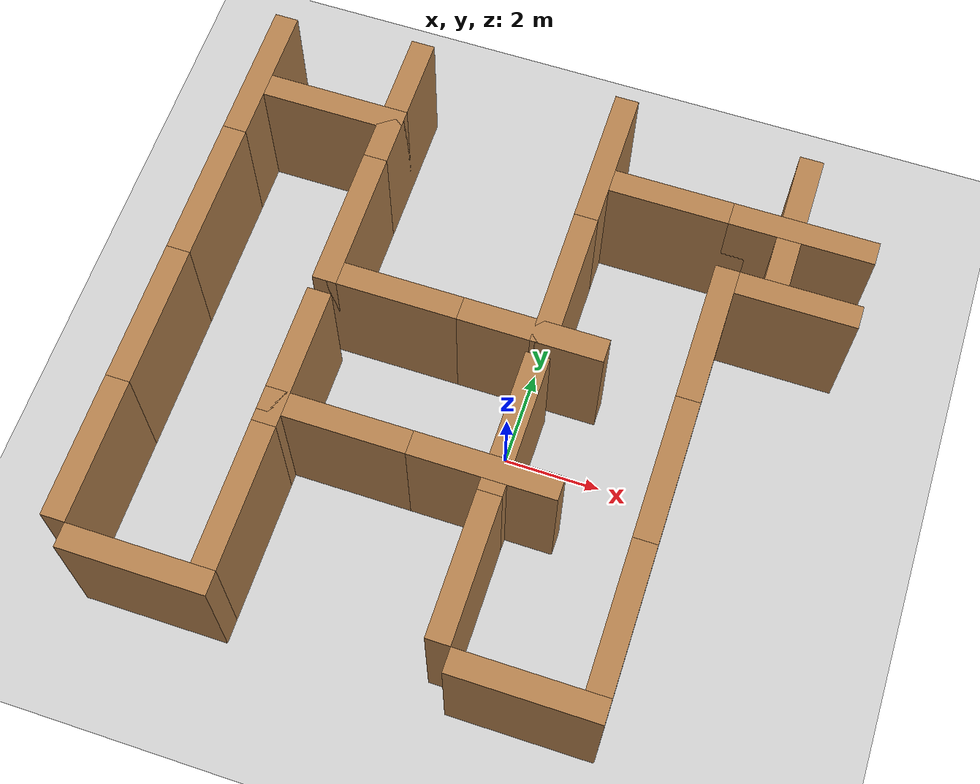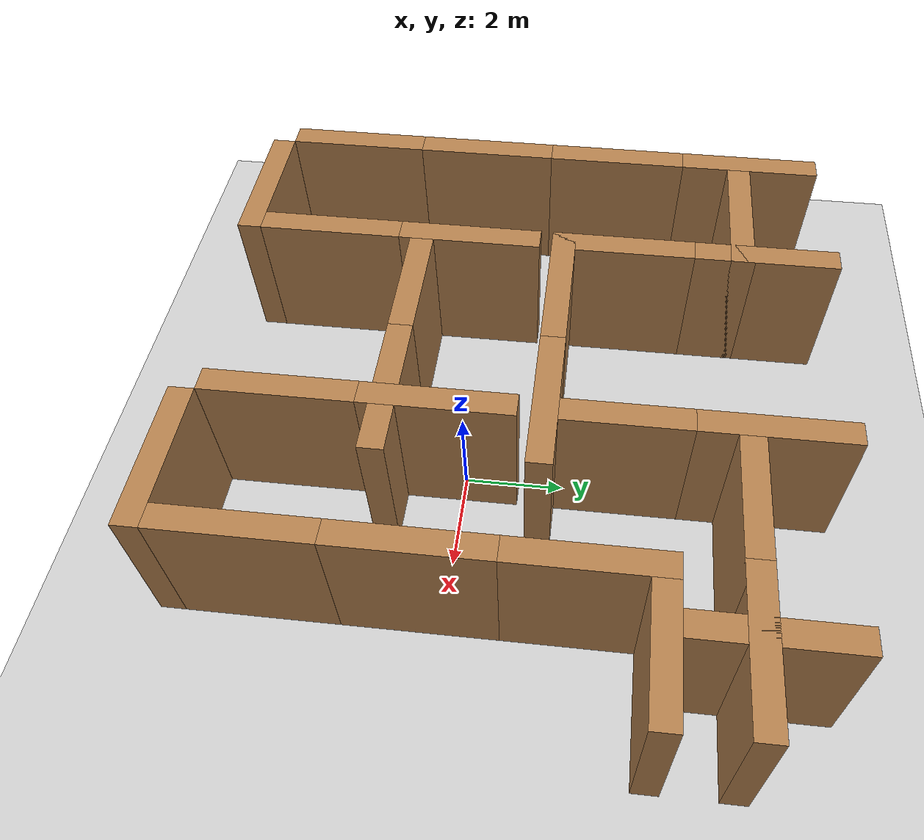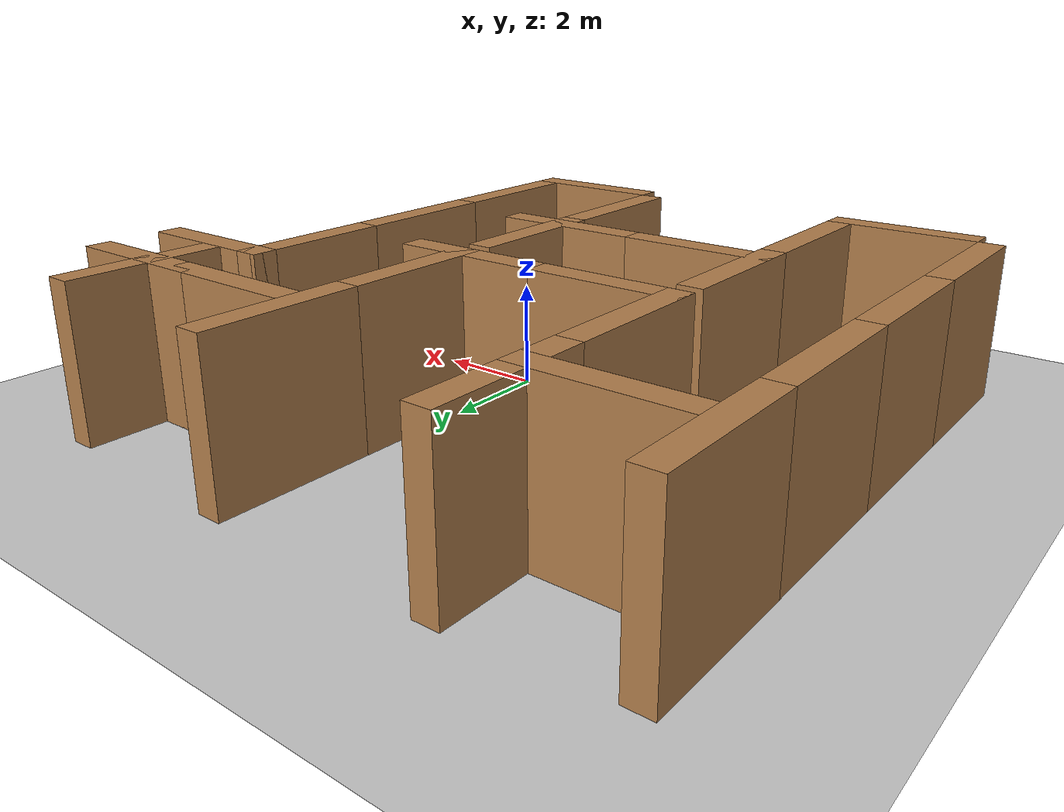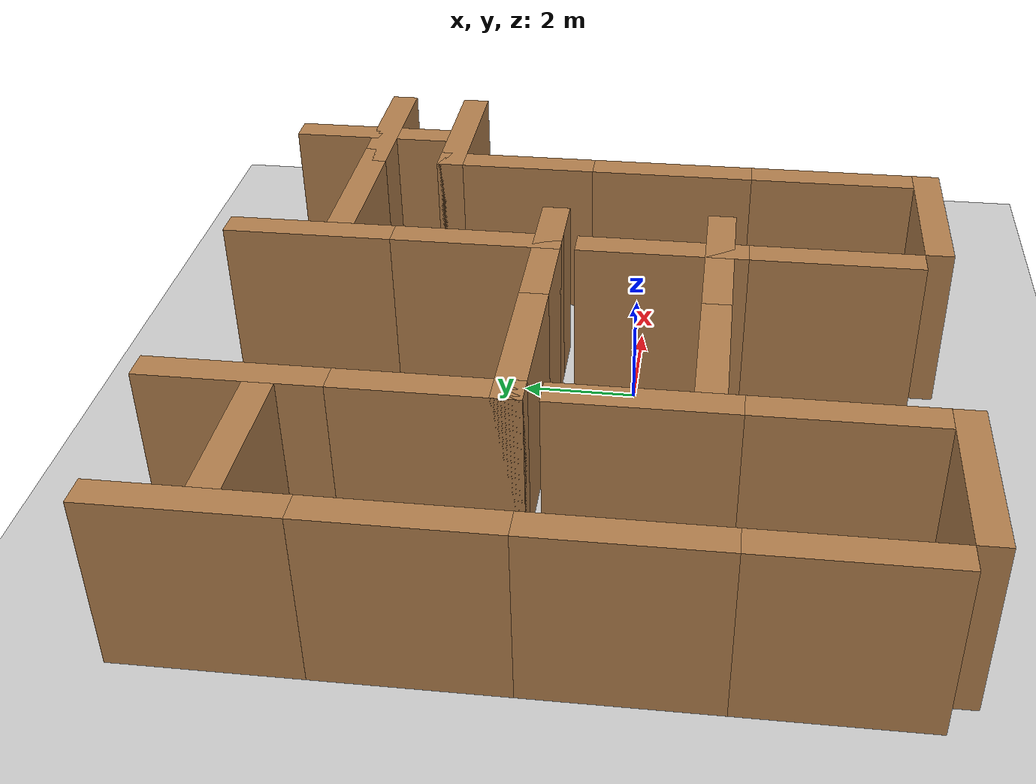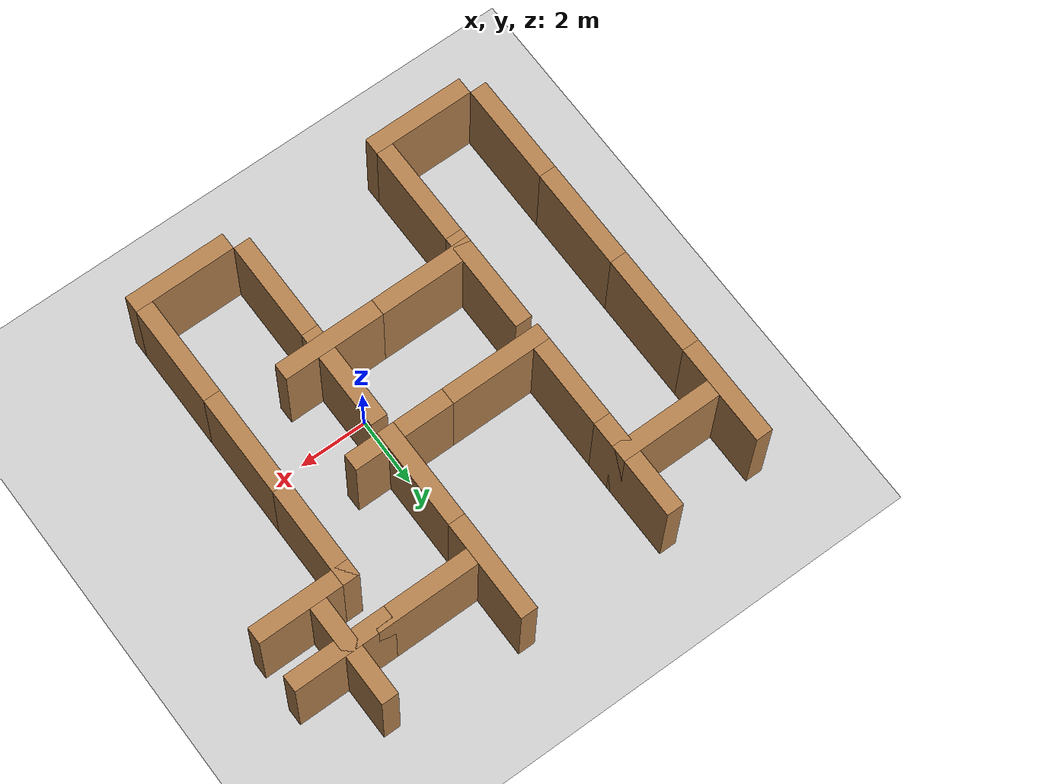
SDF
<sdf version="1.10">
 <world name="h_map_world">
  <model name="ground_plane">
   <static>true</static>
   <link name="link">
    <collision name="collision">
     <geometry><plane><normal>0 0 1</normal><size>100 100</size></plane></geometry>
     <surface><friction><ode><mu>50</mu></ode></friction></surface>
    </collision>
    <visual name="visual">
     <geometry><plane><normal>0 0 1</normal><size>100 100</size></plane></geometry>
     <material>
      <ambient>0.800000012 0.800000012 0.800000012 1</ambient>
      <diffuse>0.800000012 0.800000012 0.800000012 1</diffuse>
      <specular>0.800000012 0.800000012 0.800000012 1</specular>
     </material>
    </visual>
    <inertial>
     <mass>1</mass>
     <inertia><ixx>1</ixx><ixy>0</ixy><ixz>0</ixz><iyy>1</iyy><iyz>0</iyz><izz>1</izz></inertia>
    </inertial>
   </link>
  </model>
  <model name="left_west_0">
   <static>true</static>
   <link name="chassis">
    <pose>0 0 1.5 0 0 0</pose>
    <collision name="collision"><geometry><box><size>3 0.5 3</size></box></geometry></collision>
    <visual name="visual">
     <geometry>
      <mesh><uri>model://brick_box_3x1x3/meshes/simple_box.dae</uri><scale>3 0.5 3</scale></mesh>
     </geometry>
     <material>
      <diffuse>1 1 1 1</diffuse>
      <script><uri>file://media/materials/scripts/gazebo.material</uri><name>Gazebo/Wood</name></script>
      <pbr><metal><albedo_map>model://brick_box_3x1x3/materials/textures/simple_box.png</albedo_map></metal></pbr>
     </material>
    </visual>
   </link>
   <pose>-7.2500 -3.4000 0 0 0 -1.5707963268</pose>
  </model>
  <model name="left_west_1">
   <static>true</static>
   <link name="chassis">
    <pose>0 0 1.5 0 0 0</pose>
    <collision name="collision"><geometry><box><size>3 0.5 3</size></box></geometry></collision>
    <visual name="visual">
     <geometry>
      <mesh><uri>model://brick_box_3x1x3/meshes/simple_box.dae</uri><scale>3 0.5 3</scale></mesh>
     </geometry>
     <material>
      <diffuse>1 1 1 1</diffuse>
      <script><uri>file://media/materials/scripts/gazebo.material</uri><name>Gazebo/Wood</name></script>
      <pbr><metal><albedo_map>model://brick_box_3x1x3/materials/textures/simple_box.png</albedo_map></metal></pbr>
     </material>
    </visual>
   </link>
   <pose>-7.2500 -0.4000 0 0 0 -1.5707963268</pose>
  </model>
  <model name="left_west_2">
   <static>true</static>
   <link name="chassis">
    <pose>0 0 1.5 0 0 0</pose>
    <collision name="collision"><geometry><box><size>3 0.5 3</size></box></geometry></collision>
    <visual name="visual">
     <geometry>
      <mesh><uri>model://brick_box_3x1x3/meshes/simple_box.dae</uri><scale>3 0.5 3</scale></mesh>
     </geometry>
     <material>
      <diffuse>1 1 1 1</diffuse>
      <script><uri>file://media/materials/scripts/gazebo.material</uri><name>Gazebo/Wood</name></script>
      <pbr><metal><albedo_map>model://brick_box_3x1x3/materials/textures/simple_box.png</albedo_map></metal></pbr>
     </material>
    </visual>
   </link>
   <pose>-7.2500 2.6000 0 0 0 -1.5707963268</pose>
  </model>
  <model name="left_west_3">
   <static>true</static>
   <link name="chassis">
    <pose>0 0 1.5 0 0 0</pose>
    <collision name="collision"><geometry><box><size>3 0.5 3</size></box></geometry></collision>
    <visual name="visual">
     <geometry>
      <mesh><uri>model://brick_box_3x1x3/meshes/simple_box.dae</uri><scale>3 0.5 3</scale></mesh>
     </geometry>
     <material>
      <diffuse>1 1 1 1</diffuse>
      <script><uri>file://media/materials/scripts/gazebo.material</uri><name>Gazebo/Wood</name></script>
      <pbr><metal><albedo_map>model://brick_box_3x1x3/materials/textures/simple_box.png</albedo_map></metal></pbr>
     </material>
    </visual>
   </link>
   <pose>-7.2500 5.6000 0 0 0 -1.5707963268</pose>
  </model>
  <model name="left_north_0">
   <static>true</static>
   <link name="chassis">
    <pose>0 0 1.5 0 0 0</pose>
    <collision name="collision"><geometry><box><size>3 0.5 3</size></box></geometry></collision>
    <visual name="visual">
     <geometry>
      <mesh><uri>model://brick_box_3x1x3/meshes/simple_box.dae</uri><scale>3 0.5 3</scale></mesh>
     </geometry>
     <material>
      <diffuse>1 1 1 1</diffuse>
      <script><uri>file://media/materials/scripts/gazebo.material</uri><name>Gazebo/Wood</name></script>
      <pbr><metal><albedo_map>model://brick_box_3x1x3/materials/textures/simple_box.png</albedo_map></metal></pbr>
     </material>
    </visual>
   </link>
   <pose>-5.5000 5.3500 0 0 0 0.0000000000</pose>
  </model>
  <model name="left_south_0">
   <static>true</static>
   <link name="chassis">
    <pose>0 0 1.5 0 0 0</pose>
    <collision name="collision"><geometry><box><size>3 0.5 3</size></box></geometry></collision>
    <visual name="visual">
     <geometry>
      <mesh><uri>model://brick_box_3x1x3/meshes/simple_box.dae</uri><scale>3 0.5 3</scale></mesh>
     </geometry>
     <material>
      <diffuse>1 1 1 1</diffuse>
      <script><uri>file://media/materials/scripts/gazebo.material</uri><name>Gazebo/Wood</name></script>
      <pbr><metal><albedo_map>model://brick_box_3x1x3/materials/textures/simple_box.png</albedo_map></metal></pbr>
     </material>
    </visual>
   </link>
   <pose>-5.5000 -5.1500 0 0 0 0.0000000000</pose>
  </model>
  <model name="right_north_0">
   <static>true</static>
   <link name="chassis">
    <pose>0 0 1.5 0 0 0</pose>
    <collision name="collision"><geometry><box><size>3 0.5 3</size></box></geometry></collision>
    <visual name="visual">
     <geometry>
      <mesh><uri>model://brick_box_3x1x3/meshes/simple_box.dae</uri><scale>3 0.5 3</scale></mesh>
     </geometry>
     <material>
      <diffuse>1 1 1 1</diffuse>
      <script><uri>file://media/materials/scripts/gazebo.material</uri><name>Gazebo/Wood</name></script>
      <pbr><metal><albedo_map>model://brick_box_3x1x3/materials/textures/simple_box.png</albedo_map></metal></pbr>
     </material>
    </visual>
   </link>
   <pose>2.0000 5.3500 0 0 0 0.0000000000</pose>
  </model>
  <model name="right_south_0">
   <static>true</static>
   <link name="chassis">
    <pose>0 0 1.5 0 0 0</pose>
    <collision name="collision"><geometry><box><size>3 0.5 3</size></box></geometry></collision>
    <visual name="visual">
     <geometry>
      <mesh><uri>model://brick_box_3x1x3/meshes/simple_box.dae</uri><scale>3 0.5 3</scale></mesh>
     </geometry>
     <material>
      <diffuse>1 1 1 1</diffuse>
      <script><uri>file://media/materials/scripts/gazebo.material</uri><name>Gazebo/Wood</name></script>
      <pbr><metal><albedo_map>model://brick_box_3x1x3/materials/textures/simple_box.png</albedo_map></metal></pbr>
     </material>
    </visual>
   </link>
   <pose>2.0000 -5.1500 0 0 0 0.0000000000</pose>
  </model>
  <model name="right_east_0">
   <static>true</static>
   <link name="chassis">
    <pose>0 0 1.5 0 0 0</pose>
    <collision name="collision"><geometry><box><size>3 0.5 3</size></box></geometry></collision>
    <visual name="visual">
     <geometry>
      <mesh><uri>model://brick_box_3x1x3/meshes/simple_box.dae</uri><scale>3 0.5 3</scale></mesh>
     </geometry>
     <material>
      <diffuse>1 1 1 1</diffuse>
      <script><uri>file://media/materials/scripts/gazebo.material</uri><name>Gazebo/Wood</name></script>
      <pbr><metal><albedo_map>model://brick_box_3x1x3/materials/textures/simple_box.png</albedo_map></metal></pbr>
     </material>
    </visual>
   </link>
   <pose>3.2500 -3.4000 0 0 0 -1.5707963268</pose>
  </model>
  <model name="right_east_1">
   <static>true</static>
   <link name="chassis">
    <pose>0 0 1.5 0 0 0</pose>
    <collision name="collision"><geometry><box><size>3 0.5 3</size></box></geometry></collision>
    <visual name="visual">
     <geometry>
      <mesh><uri>model://brick_box_3x1x3/meshes/simple_box.dae</uri><scale>3 0.5 3</scale></mesh>
     </geometry>
     <material>
      <diffuse>1 1 1 1</diffuse>
      <script><uri>file://media/materials/scripts/gazebo.material</uri><name>Gazebo/Wood</name></script>
      <pbr><metal><albedo_map>model://brick_box_3x1x3/materials/textures/simple_box.png</albedo_map></metal></pbr>
     </material>
    </visual>
   </link>
   <pose>3.2500 -0.4000 0 0 0 -1.5707963268</pose>
  </model>
  <model name="right_east_2">
   <static>true</static>
   <link name="chassis">
    <pose>0 0 1.5 0 0 0</pose>
    <collision name="collision"><geometry><box><size>3 0.5 3</size></box></geometry></collision>
    <visual name="visual">
     <geometry>
      <mesh><uri>model://brick_box_3x1x3/meshes/simple_box.dae</uri><scale>3 0.5 3</scale></mesh>
     </geometry>
     <material>
      <diffuse>1 1 1 1</diffuse>
      <script><uri>file://media/materials/scripts/gazebo.material</uri><name>Gazebo/Wood</name></script>
      <pbr><metal><albedo_map>model://brick_box_3x1x3/materials/textures/simple_box.png</albedo_map></metal></pbr>
     </material>
    </visual>
   </link>
   <pose>3.2500 2.6000 0 0 0 -1.5707963268</pose>
  </model>
  <model name="pocket_north_0">
   <static>true</static>
   <link name="chassis">
    <pose>0 0 1.5 0 0 0</pose>
    <collision name="collision"><geometry><box><size>3 0.5 3</size></box></geometry></collision>
    <visual name="visual">
     <geometry>
      <mesh><uri>model://brick_box_3x1x3/meshes/simple_box.dae</uri><scale>3 0.5 3</scale></mesh>
     </geometry>
     <material>
      <diffuse>1 1 1 1</diffuse>
      <script><uri>file://media/materials/scripts/gazebo.material</uri><name>Gazebo/Wood</name></script>
      <pbr><metal><albedo_map>model://brick_box_3x1x3/materials/textures/simple_box.png</albedo_map></metal></pbr>
     </material>
    </visual>
   </link>
   <pose>4.5000 5.3500 0 0 0 0.0000000000</pose>
  </model>
  <model name="pocket_east_0">
   <static>true</static>
   <link name="chassis">
    <pose>0 0 1.5 0 0 0</pose>
    <collision name="collision"><geometry><box><size>3 0.5 3</size></box></geometry></collision>
    <visual name="visual">
     <geometry>
      <mesh><uri>model://brick_box_3x1x3/meshes/simple_box.dae</uri><scale>3 0.5 3</scale></mesh>
     </geometry>
     <material>
      <diffuse>1 1 1 1</diffuse>
      <script><uri>file://media/materials/scripts/gazebo.material</uri><name>Gazebo/Wood</name></script>
      <pbr><metal><albedo_map>model://brick_box_3x1x3/materials/textures/simple_box.png</albedo_map></metal></pbr>
     </material>
    </visual>
   </link>
   <pose>4.2500 5.6000 0 0 0 -1.5707963268</pose>
  </model>
  <model name="pocket_south_0">
   <static>true</static>
   <link name="chassis">
    <pose>0 0 1.5 0 0 0</pose>
    <collision name="collision"><geometry><box><size>3 0.5 3</size></box></geometry></collision>
    <visual name="visual">
     <geometry>
      <mesh><uri>model://brick_box_3x1x3/meshes/simple_box.dae</uri><scale>3 0.5 3</scale></mesh>
     </geometry>
     <material>
      <diffuse>1 1 1 1</diffuse>
      <script><uri>file://media/materials/scripts/gazebo.material</uri><name>Gazebo/Wood</name></script>
      <pbr><metal><albedo_map>model://brick_box_3x1x3/materials/textures/simple_box.png</albedo_map></metal></pbr>
     </material>
    </visual>
   </link>
   <pose>4.5000 3.8500 0 0 0 0.0000000000</pose>
  </model>
  <model name="left_east_upper_0">
   <static>true</static>
   <link name="chassis">
    <pose>0 0 1.5 0 0 0</pose>
    <collision name="collision"><geometry><box><size>3 0.5 3</size></box></geometry></collision>
    <visual name="visual">
     <geometry>
      <mesh><uri>model://brick_box_3x1x3/meshes/simple_box.dae</uri><scale>3 0.5 3</scale></mesh>
     </geometry>
     <material>
      <diffuse>1 1 1 1</diffuse>
      <script><uri>file://media/materials/scripts/gazebo.material</uri><name>Gazebo/Wood</name></script>
      <pbr><metal><albedo_map>model://brick_box_3x1x3/materials/textures/simple_box.png</albedo_map></metal></pbr>
     </material>
    </visual>
   </link>
   <pose>-4.2500 2.8500 0 0 0 -1.5707963268</pose>
  </model>
  <model name="left_east_upper_1">
   <static>true</static>
   <link name="chassis">
    <pose>0 0 1.5 0 0 0</pose>
    <collision name="collision"><geometry><box><size>3 0.5 3</size></box></geometry></collision>
    <visual name="visual">
     <geometry>
      <mesh><uri>model://brick_box_3x1x3/meshes/simple_box.dae</uri><scale>3 0.5 3</scale></mesh>
     </geometry>
     <material>
      <diffuse>1 1 1 1</diffuse>
      <script><uri>file://media/materials/scripts/gazebo.material</uri><name>Gazebo/Wood</name></script>
      <pbr><metal><albedo_map>model://brick_box_3x1x3/materials/textures/simple_box.png</albedo_map></metal></pbr>
     </material>
    </visual>
   </link>
   <pose>-4.2500 5.8500 0 0 0 -1.5707963268</pose>
  </model>
  <model name="left_east_lower_0">
   <static>true</static>
   <link name="chassis">
    <pose>0 0 1.5 0 0 0</pose>
    <collision name="collision"><geometry><box><size>3 0.5 3</size></box></geometry></collision>
    <visual name="visual">
     <geometry>
      <mesh><uri>model://brick_box_3x1x3/meshes/simple_box.dae</uri><scale>3 0.5 3</scale></mesh>
     </geometry>
     <material>
      <diffuse>1 1 1 1</diffuse>
      <script><uri>file://media/materials/scripts/gazebo.material</uri><name>Gazebo/Wood</name></script>
      <pbr><metal><albedo_map>model://brick_box_3x1x3/materials/textures/simple_box.png</albedo_map></metal></pbr>
     </material>
    </visual>
   </link>
   <pose>-4.2500 -3.4000 0 0 0 -1.5707963268</pose>
  </model>
  <model name="left_east_lower_1">
   <static>true</static>
   <link name="chassis">
    <pose>0 0 1.5 0 0 0</pose>
    <collision name="collision"><geometry><box><size>3 0.5 3</size></box></geometry></collision>
    <visual name="visual">
     <geometry>
      <mesh><uri>model://brick_box_3x1x3/meshes/simple_box.dae</uri><scale>3 0.5 3</scale></mesh>
     </geometry>
     <material>
      <diffuse>1 1 1 1</diffuse>
      <script><uri>file://media/materials/scripts/gazebo.material</uri><name>Gazebo/Wood</name></script>
      <pbr><metal><albedo_map>model://brick_box_3x1x3/materials/textures/simple_box.png</albedo_map></metal></pbr>
     </material>
    </visual>
   </link>
   <pose>-4.2500 -0.4000 0 0 0 -1.5707963268</pose>
  </model>
  <model name="bridge_north_0">
   <static>true</static>
   <link name="chassis">
    <pose>0 0 1.5 0 0 0</pose>
    <collision name="collision"><geometry><box><size>3 0.5 3</size></box></geometry></collision>
    <visual name="visual">
     <geometry>
      <mesh><uri>model://brick_box_3x1x3/meshes/simple_box.dae</uri><scale>3 0.5 3</scale></mesh>
     </geometry>
     <material>
      <diffuse>1 1 1 1</diffuse>
      <script><uri>file://media/materials/scripts/gazebo.material</uri><name>Gazebo/Wood</name></script>
      <pbr><metal><albedo_map>model://brick_box_3x1x3/materials/textures/simple_box.png</albedo_map></metal></pbr>
     </material>
    </visual>
   </link>
   <pose>-3.0000 1.6000 0 0 0 0.0000000000</pose>
  </model>
  <model name="bridge_north_1">
   <static>true</static>
   <link name="chassis">
    <pose>0 0 1.5 0 0 0</pose>
    <collision name="collision"><geometry><box><size>3 0.5 3</size></box></geometry></collision>
    <visual name="visual">
     <geometry>
      <mesh><uri>model://brick_box_3x1x3/meshes/simple_box.dae</uri><scale>3 0.5 3</scale></mesh>
     </geometry>
     <material>
      <diffuse>1 1 1 1</diffuse>
      <script><uri>file://media/materials/scripts/gazebo.material</uri><name>Gazebo/Wood</name></script>
      <pbr><metal><albedo_map>model://brick_box_3x1x3/materials/textures/simple_box.png</albedo_map></metal></pbr>
     </material>
    </visual>
   </link>
   <pose>0.0000 1.6000 0 0 0 0.0000000000</pose>
  </model>
  <model name="bridge_south_0">
   <static>true</static>
   <link name="chassis">
    <pose>0 0 1.5 0 0 0</pose>
    <collision name="collision"><geometry><box><size>3 0.5 3</size></box></geometry></collision>
    <visual name="visual">
     <geometry>
      <mesh><uri>model://brick_box_3x1x3/meshes/simple_box.dae</uri><scale>3 0.5 3</scale></mesh>
     </geometry>
     <material>
      <diffuse>1 1 1 1</diffuse>
      <script><uri>file://media/materials/scripts/gazebo.material</uri><name>Gazebo/Wood</name></script>
      <pbr><metal><albedo_map>model://brick_box_3x1x3/materials/textures/simple_box.png</albedo_map></metal></pbr>
     </material>
    </visual>
   </link>
   <pose>-3.0000 -1.4000 0 0 0 0.0000000000</pose>
  </model>
  <model name="bridge_south_1">
   <static>true</static>
   <link name="chassis">
    <pose>0 0 1.5 0 0 0</pose>
    <collision name="collision"><geometry><box><size>3 0.5 3</size></box></geometry></collision>
    <visual name="visual">
     <geometry>
      <mesh><uri>model://brick_box_3x1x3/meshes/simple_box.dae</uri><scale>3 0.5 3</scale></mesh>
     </geometry>
     <material>
      <diffuse>1 1 1 1</diffuse>
      <script><uri>file://media/materials/scripts/gazebo.material</uri><name>Gazebo/Wood</name></script>
      <pbr><metal><albedo_map>model://brick_box_3x1x3/materials/textures/simple_box.png</albedo_map></metal></pbr>
     </material>
    </visual>
   </link>
   <pose>0.0000 -1.4000 0 0 0 0.0000000000</pose>
  </model>
  <model name="right_west_upper_0">
   <static>true</static>
   <link name="chassis">
    <pose>0 0 1.5 0 0 0</pose>
    <collision name="collision"><geometry><box><size>3 0.5 3</size></box></geometry></collision>
    <visual name="visual">
     <geometry>
      <mesh><uri>model://brick_box_3x1x3/meshes/simple_box.dae</uri><scale>3 0.5 3</scale></mesh>
     </geometry>
     <material>
      <diffuse>1 1 1 1</diffuse>
      <script><uri>file://media/materials/scripts/gazebo.material</uri><name>Gazebo/Wood</name></script>
      <pbr><metal><albedo_map>model://brick_box_3x1x3/materials/textures/simple_box.png</albedo_map></metal></pbr>
     </material>
    </visual>
   </link>
   <pose>0.2500 2.8500 0 0 0 -1.5707963268</pose>
  </model>
  <model name="right_west_upper_1">
   <static>true</static>
   <link name="chassis">
    <pose>0 0 1.5 0 0 0</pose>
    <collision name="collision"><geometry><box><size>3 0.5 3</size></box></geometry></collision>
    <visual name="visual">
     <geometry>
      <mesh><uri>model://brick_box_3x1x3/meshes/simple_box.dae</uri><scale>3 0.5 3</scale></mesh>
     </geometry>
     <material>
      <diffuse>1 1 1 1</diffuse>
      <script><uri>file://media/materials/scripts/gazebo.material</uri><name>Gazebo/Wood</name></script>
      <pbr><metal><albedo_map>model://brick_box_3x1x3/materials/textures/simple_box.png</albedo_map></metal></pbr>
     </material>
    </visual>
   </link>
   <pose>0.2500 5.8500 0 0 0 -1.5707963268</pose>
  </model>
  <model name="right_west_lower_0">
   <static>true</static>
   <link name="chassis">
    <pose>0 0 1.5 0 0 0</pose>
    <collision name="collision"><geometry><box><size>3 0.5 3</size></box></geometry></collision>
    <visual name="visual">
     <geometry>
      <mesh><uri>model://brick_box_3x1x3/meshes/simple_box.dae</uri><scale>3 0.5 3</scale></mesh>
     </geometry>
     <material>
      <diffuse>1 1 1 1</diffuse>
      <script><uri>file://media/materials/scripts/gazebo.material</uri><name>Gazebo/Wood</name></script>
      <pbr><metal><albedo_map>model://brick_box_3x1x3/materials/textures/simple_box.png</albedo_map></metal></pbr>
     </material>
    </visual>
   </link>
   <pose>0.2500 -3.4000 0 0 0 -1.5707963268</pose>
  </model>
  <model name="right_west_lower_1">
   <static>true</static>
   <link name="chassis">
    <pose>0 0 1.5 0 0 0</pose>
    <collision name="collision"><geometry><box><size>3 0.5 3</size></box></geometry></collision>
    <visual name="visual">
     <geometry>
      <mesh><uri>model://brick_box_3x1x3/meshes/simple_box.dae</uri><scale>3 0.5 3</scale></mesh>
     </geometry>
     <material>
      <diffuse>1 1 1 1</diffuse>
      <script><uri>file://media/materials/scripts/gazebo.material</uri><name>Gazebo/Wood</name></script>
      <pbr><metal><albedo_map>model://brick_box_3x1x3/materials/textures/simple_box.png</albedo_map></metal></pbr>
     </material>
    </visual>
   </link>
   <pose>0.2500 -0.4000 0 0 0 -1.5707963268</pose>
  </model>
 </world>
</sdf>
